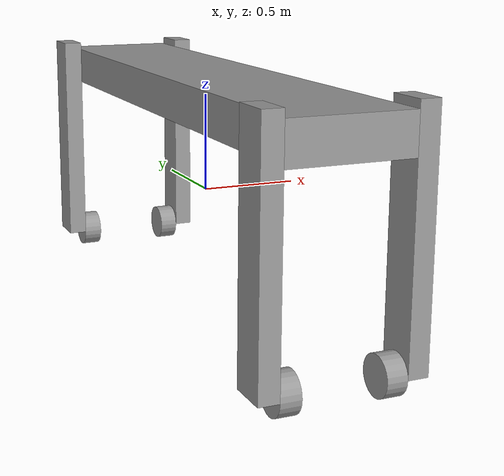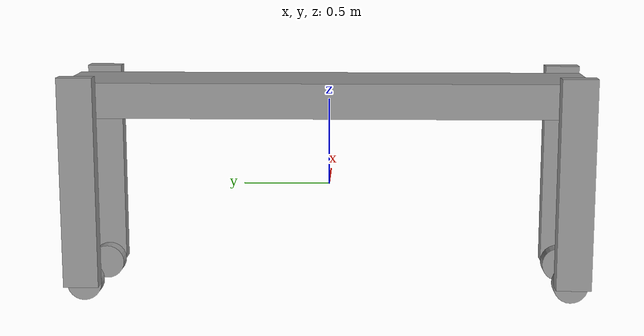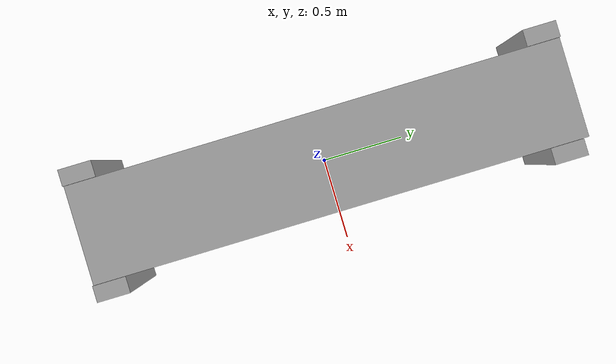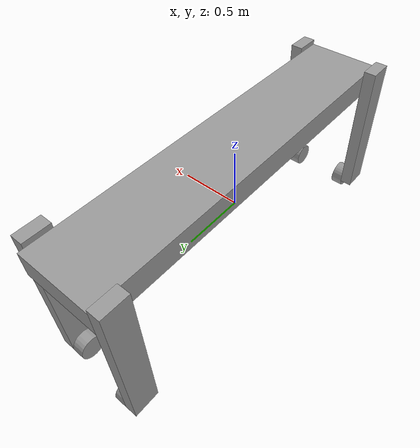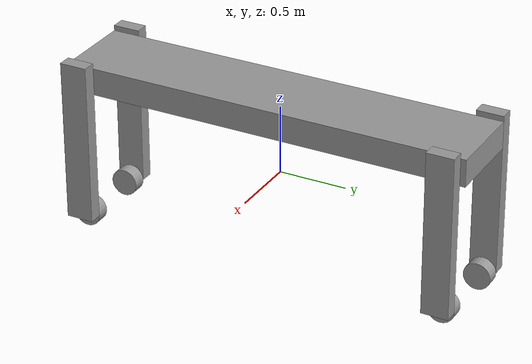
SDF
<?xml version='1.0'?>
<sdf version='1.7'>
  <model name='trolley_3m_long'>
    <link name='link_0'>
      <inertial>
        <mass>1</mass>
        <inertia>
          <ixx>0.166667</ixx>
          <ixy>0</ixy>
          <ixz>0</ixz>
          <iyy>0.166667</iyy>
          <iyz>0</iyz>
          <izz>0.166667</izz>
        </inertia>
        <pose>0 0 0 0 -0 0</pose>
      </inertial>
      <pose>0.010003 0.008889 0.52196 0 -0 0</pose>
      <gravity>1</gravity>
      <self_collide>0</self_collide>
      <kinematic>0</kinematic>
      <enable_wind>0</enable_wind>
      <visual name='visual'>
        <pose>0 0 0 0 -0 0</pose>
        <geometry>
          <box>
            <size>0.6 3 0.2</size>
          </box>
        </geometry>
        <material>
          <lighting>1</lighting>
          <script>
            <uri>file://media/materials/scripts/gazebo.material</uri>
            <name>Gazebo/Grey</name>
          </script>
          <shader type='pixel'>
            <normal_map>__default__</normal_map>
          </shader>
          <ambient>0.3 0.3 0.3 1</ambient>
          <diffuse>0.7 0.7 0.7 1</diffuse>
          <specular>0.01 0.01 0.01 1</specular>
          <emissive>0 0 0 1</emissive>
        </material>
        <transparency>0</transparency>
        <cast_shadows>1</cast_shadows>
      </visual>
      <collision name='collision'>
        <laser_retro>0</laser_retro>
        <max_contacts>10</max_contacts>
        <pose>0 0 0 0 -0 0</pose>
        <geometry>
          <box>
            <size>0.6 3 0.2</size>
          </box>
        </geometry>
        <surface>
          <friction>
            <ode>
              <mu>1</mu>
              <mu2>1</mu2>
              <fdir1>0 0 0</fdir1>
              <slip1>0</slip1>
              <slip2>0</slip2>
            </ode>
            <torsional>
              <coefficient>1</coefficient>
              <patch_radius>0</patch_radius>
              <surface_radius>0</surface_radius>
              <use_patch_radius>1</use_patch_radius>
              <ode>
                <slip>0</slip>
              </ode>
            </torsional>
          </friction>
          <bounce>
            <restitution_coefficient>0</restitution_coefficient>
            <threshold>1e+06</threshold>
          </bounce>
          <contact>
            <collide_without_contact>0</collide_without_contact>
            <collide_without_contact_bitmask>1</collide_without_contact_bitmask>
            <collide_bitmask>1</collide_bitmask>
            <ode>
              <soft_cfm>0</soft_cfm>
              <soft_erp>0.2</soft_erp>
              <kp>1e+13</kp>
              <kd>1</kd>
              <max_vel>0.01</max_vel>
              <min_depth>0</min_depth>
            </ode>
            <bullet>
              <split_impulse>1</split_impulse>
              <split_impulse_penetration_threshold>-0.01</split_impulse_penetration_threshold>
              <soft_cfm>0</soft_cfm>
              <soft_erp>0.2</soft_erp>
              <kp>1e+13</kp>
              <kd>1</kd>
            </bullet>
          </contact>
        </surface>
      </collision>
    </link>
    <link name='link_1'>
      <inertial>
        <mass>1</mass>
        <inertia>
          <ixx>0.166667</ixx>
          <ixy>0</ixy>
          <ixz>0</ixz>
          <iyy>0.166667</iyy>
          <iyz>0</iyz>
          <izz>0.166667</izz>
        </inertia>
        <pose>0 0 0 0 -0 0</pose>
      </inertial>
      <pose>0.360003 1.36889 0.06196 0 -0 0</pose>
      <gravity>1</gravity>
      <self_collide>0</self_collide>
      <kinematic>0</kinematic>
      <enable_wind>0</enable_wind>
      <visual name='visual'>
        <pose>0 0 0 0 -0 0</pose>
        <geometry>
          <box>
            <size>0.1 0.2 1.2</size>
          </box>
        </geometry>
        <material>
          <lighting>1</lighting>
          <script>
            <uri>file://media/materials/scripts/gazebo.material</uri>
            <name>Gazebo/Grey</name>
          </script>
          <shader type='pixel'>
            <normal_map>__default__</normal_map>
          </shader>
          <ambient>0.3 0.3 0.3 1</ambient>
          <diffuse>0.7 0.7 0.7 1</diffuse>
          <specular>0.01 0.01 0.01 1</specular>
          <emissive>0 0 0 1</emissive>
        </material>
        <transparency>0</transparency>
        <cast_shadows>1</cast_shadows>
      </visual>
      <collision name='collision'>
        <laser_retro>0</laser_retro>
        <max_contacts>10</max_contacts>
        <pose>0 0 0 0 -0 0</pose>
        <geometry>
          <box>
            <size>0.1 0.2 1.2</size>
          </box>
        </geometry>
        <surface>
          <friction>
            <ode>
              <mu>1</mu>
              <mu2>1</mu2>
              <fdir1>0 0 0</fdir1>
              <slip1>0</slip1>
              <slip2>0</slip2>
            </ode>
            <torsional>
              <coefficient>1</coefficient>
              <patch_radius>0</patch_radius>
              <surface_radius>0</surface_radius>
              <use_patch_radius>1</use_patch_radius>
              <ode>
                <slip>0</slip>
              </ode>
            </torsional>
          </friction>
          <bounce>
            <restitution_coefficient>0</restitution_coefficient>
            <threshold>1e+06</threshold>
          </bounce>
          <contact>
            <collide_without_contact>0</collide_without_contact>
            <collide_without_contact_bitmask>1</collide_without_contact_bitmask>
            <collide_bitmask>1</collide_bitmask>
            <ode>
              <soft_cfm>0</soft_cfm>
              <soft_erp>0.2</soft_erp>
              <kp>1e+13</kp>
              <kd>1</kd>
              <max_vel>0.01</max_vel>
              <min_depth>0</min_depth>
            </ode>
            <bullet>
              <split_impulse>1</split_impulse>
              <split_impulse_penetration_threshold>-0.01</split_impulse_penetration_threshold>
              <soft_cfm>0</soft_cfm>
              <soft_erp>0.2</soft_erp>
              <kp>1e+13</kp>
              <kd>1</kd>
            </bullet>
          </contact>
        </surface>
      </collision>
    </link>
    <link name='link_1_clone'>
      <inertial>
        <mass>1</mass>
        <inertia>
          <ixx>0.166667</ixx>
          <ixy>0</ixy>
          <ixz>0</ixz>
          <iyy>0.166667</iyy>
          <iyz>0</iyz>
          <izz>0.166667</izz>
        </inertia>
        <pose>0 0 0 0 -0 0</pose>
      </inertial>
      <pose>-0.339997 1.40889 0.06196 0 -0 0</pose>
      <gravity>1</gravity>
      <self_collide>0</self_collide>
      <kinematic>0</kinematic>
      <enable_wind>0</enable_wind>
      <visual name='visual'>
        <pose>0 0 0 0 -0 0</pose>
        <geometry>
          <box>
            <size>0.1 0.2 1.2</size>
          </box>
        </geometry>
        <material>
          <lighting>1</lighting>
          <script>
            <uri>file://media/materials/scripts/gazebo.material</uri>
            <name>Gazebo/Grey</name>
          </script>
          <shader type='pixel'>
            <normal_map>__default__</normal_map>
          </shader>
          <ambient>0.3 0.3 0.3 1</ambient>
          <diffuse>0.7 0.7 0.7 1</diffuse>
          <specular>0.01 0.01 0.01 1</specular>
          <emissive>0 0 0 1</emissive>
        </material>
        <transparency>0</transparency>
        <cast_shadows>1</cast_shadows>
      </visual>
      <collision name='collision'>
        <laser_retro>0</laser_retro>
        <max_contacts>10</max_contacts>
        <pose>0 0 0 0 -0 0</pose>
        <geometry>
          <box>
            <size>0.1 0.2 1.2</size>
          </box>
        </geometry>
        <surface>
          <friction>
            <ode>
              <mu>1</mu>
              <mu2>1</mu2>
              <fdir1>0 0 0</fdir1>
              <slip1>0</slip1>
              <slip2>0</slip2>
            </ode>
            <torsional>
              <coefficient>1</coefficient>
              <patch_radius>0</patch_radius>
              <surface_radius>0</surface_radius>
              <use_patch_radius>1</use_patch_radius>
              <ode>
                <slip>0</slip>
              </ode>
            </torsional>
          </friction>
          <bounce>
            <restitution_coefficient>0</restitution_coefficient>
            <threshold>1e+06</threshold>
          </bounce>
          <contact>
            <collide_without_contact>0</collide_without_contact>
            <collide_without_contact_bitmask>1</collide_without_contact_bitmask>
            <collide_bitmask>1</collide_bitmask>
            <ode>
              <soft_cfm>0</soft_cfm>
              <soft_erp>0.2</soft_erp>
              <kp>1e+13</kp>
              <kd>1</kd>
              <max_vel>0.01</max_vel>
              <min_depth>0</min_depth>
            </ode>
            <bullet>
              <split_impulse>1</split_impulse>
              <split_impulse_penetration_threshold>-0.01</split_impulse_penetration_threshold>
              <soft_cfm>0</soft_cfm>
              <soft_erp>0.2</soft_erp>
              <kp>1e+13</kp>
              <kd>1</kd>
            </bullet>
          </contact>
        </surface>
      </collision>
    </link>
    <link name='link_1_clone_0'>
      <inertial>
        <mass>1</mass>
        <inertia>
          <ixx>0.166667</ixx>
          <ixy>0</ixy>
          <ixz>0</ixz>
          <iyy>0.166667</iyy>
          <iyz>0</iyz>
          <izz>0.166667</izz>
        </inertia>
        <pose>0 0 0 0 -0 0</pose>
      </inertial>
      <pose>0.360003 -1.39111 0.06196 0 -0 0</pose>
      <gravity>1</gravity>
      <self_collide>0</self_collide>
      <kinematic>0</kinematic>
      <enable_wind>0</enable_wind>
      <visual name='visual'>
        <pose>0 0 0 0 -0 0</pose>
        <geometry>
          <box>
            <size>0.1 0.2 1.2</size>
          </box>
        </geometry>
        <material>
          <lighting>1</lighting>
          <script>
            <uri>file://media/materials/scripts/gazebo.material</uri>
            <name>Gazebo/Grey</name>
          </script>
          <shader type='pixel'>
            <normal_map>__default__</normal_map>
          </shader>
          <ambient>0.3 0.3 0.3 1</ambient>
          <diffuse>0.7 0.7 0.7 1</diffuse>
          <specular>0.01 0.01 0.01 1</specular>
          <emissive>0 0 0 1</emissive>
        </material>
        <transparency>0</transparency>
        <cast_shadows>1</cast_shadows>
      </visual>
      <collision name='collision'>
        <laser_retro>0</laser_retro>
        <max_contacts>10</max_contacts>
        <pose>0 0 0 0 -0 0</pose>
        <geometry>
          <box>
            <size>0.1 0.2 1.2</size>
          </box>
        </geometry>
        <surface>
          <friction>
            <ode>
              <mu>1</mu>
              <mu2>1</mu2>
              <fdir1>0 0 0</fdir1>
              <slip1>0</slip1>
              <slip2>0</slip2>
            </ode>
            <torsional>
              <coefficient>1</coefficient>
              <patch_radius>0</patch_radius>
              <surface_radius>0</surface_radius>
              <use_patch_radius>1</use_patch_radius>
              <ode>
                <slip>0</slip>
              </ode>
            </torsional>
          </friction>
          <bounce>
            <restitution_coefficient>0</restitution_coefficient>
            <threshold>1e+06</threshold>
          </bounce>
          <contact>
            <collide_without_contact>0</collide_without_contact>
            <collide_without_contact_bitmask>1</collide_without_contact_bitmask>
            <collide_bitmask>1</collide_bitmask>
            <ode>
              <soft_cfm>0</soft_cfm>
              <soft_erp>0.2</soft_erp>
              <kp>1e+13</kp>
              <kd>1</kd>
              <max_vel>0.01</max_vel>
              <min_depth>0</min_depth>
            </ode>
            <bullet>
              <split_impulse>1</split_impulse>
              <split_impulse_penetration_threshold>-0.01</split_impulse_penetration_threshold>
              <soft_cfm>0</soft_cfm>
              <soft_erp>0.2</soft_erp>
              <kp>1e+13</kp>
              <kd>1</kd>
            </bullet>
          </contact>
        </surface>
      </collision>
    </link>
    <link name='link_1_clone_1'>
      <inertial>
        <mass>1</mass>
        <inertia>
          <ixx>0.166667</ixx>
          <ixy>0</ixy>
          <ixz>0</ixz>
          <iyy>0.166667</iyy>
          <iyz>0</iyz>
          <izz>0.166667</izz>
        </inertia>
        <pose>0 0 0 0 -0 0</pose>
      </inertial>
      <pose>-0.339997 -1.39111 0.06196 0 -0 0</pose>
      <gravity>1</gravity>
      <self_collide>0</self_collide>
      <kinematic>0</kinematic>
      <enable_wind>0</enable_wind>
      <visual name='visual'>
        <pose>0 0 0 0 -0 0</pose>
        <geometry>
          <box>
            <size>0.1 0.2 1.2</size>
          </box>
        </geometry>
        <material>
          <lighting>1</lighting>
          <script>
            <uri>file://media/materials/scripts/gazebo.material</uri>
            <name>Gazebo/Grey</name>
          </script>
          <shader type='pixel'>
            <normal_map>__default__</normal_map>
          </shader>
          <ambient>0.3 0.3 0.3 1</ambient>
          <diffuse>0.7 0.7 0.7 1</diffuse>
          <specular>0.01 0.01 0.01 1</specular>
          <emissive>0 0 0 1</emissive>
        </material>
        <transparency>0</transparency>
        <cast_shadows>1</cast_shadows>
      </visual>
      <collision name='collision'>
        <laser_retro>0</laser_retro>
        <max_contacts>10</max_contacts>
        <pose>0 0 0 0 -0 0</pose>
        <geometry>
          <box>
            <size>0.1 0.2 1.2</size>
          </box>
        </geometry>
        <surface>
          <friction>
            <ode>
              <mu>1</mu>
              <mu2>1</mu2>
              <fdir1>0 0 0</fdir1>
              <slip1>0</slip1>
              <slip2>0</slip2>
            </ode>
            <torsional>
              <coefficient>1</coefficient>
              <patch_radius>0</patch_radius>
              <surface_radius>0</surface_radius>
              <use_patch_radius>1</use_patch_radius>
              <ode>
                <slip>0</slip>
              </ode>
            </torsional>
          </friction>
          <bounce>
            <restitution_coefficient>0</restitution_coefficient>
            <threshold>1e+06</threshold>
          </bounce>
          <contact>
            <collide_without_contact>0</collide_without_contact>
            <collide_without_contact_bitmask>1</collide_without_contact_bitmask>
            <collide_bitmask>1</collide_bitmask>
            <ode>
              <soft_cfm>0</soft_cfm>
              <soft_erp>0.2</soft_erp>
              <kp>1e+13</kp>
              <kd>1</kd>
              <max_vel>0.01</max_vel>
              <min_depth>0</min_depth>
            </ode>
            <bullet>
              <split_impulse>1</split_impulse>
              <split_impulse_penetration_threshold>-0.01</split_impulse_penetration_threshold>
              <soft_cfm>0</soft_cfm>
              <soft_erp>0.2</soft_erp>
              <kp>1e+13</kp>
              <kd>1</kd>
            </bullet>
          </contact>
        </surface>
      </collision>
    </link>
    <link name='link_2'>
      <inertial>
        <mass>1</mass>
        <inertia>
          <ixx>0.145833</ixx>
          <ixy>0</ixy>
          <ixz>0</ixz>
          <iyy>0.145833</iyy>
          <iyz>0</iyz>
          <izz>0.125</izz>
        </inertia>
        <pose>0 0 0 0 -0 0</pose>
      </inertial>
      <pose>0.260003 1.36889 -0.53804 0 1.57 0</pose>
      <gravity>1</gravity>
      <self_collide>0</self_collide>
      <kinematic>0</kinematic>
      <enable_wind>0</enable_wind>
      <visual name='visual'>
        <pose>0 0 0 0 -0 0</pose>
        <geometry>
          <cylinder>
            <radius>0.1</radius>
            <length>0.1</length>
          </cylinder>
        </geometry>
        <material>
          <lighting>1</lighting>
          <script>
            <uri>file://media/materials/scripts/gazebo.material</uri>
            <name>Gazebo/Grey</name>
          </script>
          <shader type='pixel'>
            <normal_map>__default__</normal_map>
          </shader>
          <ambient>0.3 0.3 0.3 1</ambient>
          <diffuse>0.7 0.7 0.7 1</diffuse>
          <specular>0.01 0.01 0.01 1</specular>
          <emissive>0 0 0 1</emissive>
        </material>
        <transparency>0</transparency>
        <cast_shadows>1</cast_shadows>
      </visual>
      <collision name='collision'>
        <laser_retro>0</laser_retro>
        <max_contacts>10</max_contacts>
        <pose>0 0 0 0 -0 0</pose>
        <geometry>
          <cylinder>
            <radius>0.1</radius>
            <length>0.1</length>
          </cylinder>
        </geometry>
        <surface>
          <friction>
            <ode>
              <mu>1</mu>
              <mu2>1</mu2>
              <fdir1>0 0 0</fdir1>
              <slip1>0</slip1>
              <slip2>0</slip2>
            </ode>
            <torsional>
              <coefficient>1</coefficient>
              <patch_radius>0</patch_radius>
              <surface_radius>0</surface_radius>
              <use_patch_radius>1</use_patch_radius>
              <ode>
                <slip>0</slip>
              </ode>
            </torsional>
          </friction>
          <bounce>
            <restitution_coefficient>0</restitution_coefficient>
            <threshold>1e+06</threshold>
          </bounce>
          <contact>
            <collide_without_contact>0</collide_without_contact>
            <collide_without_contact_bitmask>1</collide_without_contact_bitmask>
            <collide_bitmask>1</collide_bitmask>
            <ode>
              <soft_cfm>0</soft_cfm>
              <soft_erp>0.2</soft_erp>
              <kp>1e+13</kp>
              <kd>1</kd>
              <max_vel>0.01</max_vel>
              <min_depth>0</min_depth>
            </ode>
            <bullet>
              <split_impulse>1</split_impulse>
              <split_impulse_penetration_threshold>-0.01</split_impulse_penetration_threshold>
              <soft_cfm>0</soft_cfm>
              <soft_erp>0.2</soft_erp>
              <kp>1e+13</kp>
              <kd>1</kd>
            </bullet>
          </contact>
        </surface>
      </collision>
    </link>
    <link name='link_2_clone'>
      <inertial>
        <mass>1</mass>
        <inertia>
          <ixx>0.145833</ixx>
          <ixy>0</ixy>
          <ixz>0</ixz>
          <iyy>0.145833</iyy>
          <iyz>0</iyz>
          <izz>0.125</izz>
        </inertia>
        <pose>0 0 0 0 -0 0</pose>
      </inertial>
      <pose>-0.239917 1.40889 -0.53804 0 1.57 0</pose>
      <gravity>1</gravity>
      <self_collide>0</self_collide>
      <kinematic>0</kinematic>
      <enable_wind>0</enable_wind>
      <visual name='visual'>
        <pose>0 0 0 0 -0 0</pose>
        <geometry>
          <cylinder>
            <radius>0.1</radius>
            <length>0.1</length>
          </cylinder>
        </geometry>
        <material>
          <lighting>1</lighting>
          <script>
            <uri>file://media/materials/scripts/gazebo.material</uri>
            <name>Gazebo/Grey</name>
          </script>
          <shader type='pixel'>
            <normal_map>__default__</normal_map>
          </shader>
          <ambient>0.3 0.3 0.3 1</ambient>
          <diffuse>0.7 0.7 0.7 1</diffuse>
          <specular>0.01 0.01 0.01 1</specular>
          <emissive>0 0 0 1</emissive>
        </material>
        <transparency>0</transparency>
        <cast_shadows>1</cast_shadows>
      </visual>
      <collision name='collision'>
        <laser_retro>0</laser_retro>
        <max_contacts>10</max_contacts>
        <pose>0 0 0 0 -0 0</pose>
        <geometry>
          <cylinder>
            <radius>0.1</radius>
            <length>0.1</length>
          </cylinder>
        </geometry>
        <surface>
          <friction>
            <ode>
              <mu>1</mu>
              <mu2>1</mu2>
              <fdir1>0 0 0</fdir1>
              <slip1>0</slip1>
              <slip2>0</slip2>
            </ode>
            <torsional>
              <coefficient>1</coefficient>
              <patch_radius>0</patch_radius>
              <surface_radius>0</surface_radius>
              <use_patch_radius>1</use_patch_radius>
              <ode>
                <slip>0</slip>
              </ode>
            </torsional>
          </friction>
          <bounce>
            <restitution_coefficient>0</restitution_coefficient>
            <threshold>1e+06</threshold>
          </bounce>
          <contact>
            <collide_without_contact>0</collide_without_contact>
            <collide_without_contact_bitmask>1</collide_without_contact_bitmask>
            <collide_bitmask>1</collide_bitmask>
            <ode>
              <soft_cfm>0</soft_cfm>
              <soft_erp>0.2</soft_erp>
              <kp>1e+13</kp>
              <kd>1</kd>
              <max_vel>0.01</max_vel>
              <min_depth>0</min_depth>
            </ode>
            <bullet>
              <split_impulse>1</split_impulse>
              <split_impulse_penetration_threshold>-0.01</split_impulse_penetration_threshold>
              <soft_cfm>0</soft_cfm>
              <soft_erp>0.2</soft_erp>
              <kp>1e+13</kp>
              <kd>1</kd>
            </bullet>
          </contact>
        </surface>
      </collision>
    </link>
    <link name='link_2_clone_0'>
      <inertial>
        <mass>1</mass>
        <inertia>
          <ixx>0.145833</ixx>
          <ixy>0</ixy>
          <ixz>0</ixz>
          <iyy>0.145833</iyy>
          <iyz>0</iyz>
          <izz>0.125</izz>
        </inertia>
        <pose>0 0 0 0 -0 0</pose>
      </inertial>
      <pose>0.259923 -1.39111 -0.53804 0 1.57 0</pose>
      <gravity>1</gravity>
      <self_collide>0</self_collide>
      <kinematic>0</kinematic>
      <enable_wind>0</enable_wind>
      <visual name='visual'>
        <pose>0 0 0 0 -0 0</pose>
        <geometry>
          <cylinder>
            <radius>0.1</radius>
            <length>0.1</length>
          </cylinder>
        </geometry>
        <material>
          <lighting>1</lighting>
          <script>
            <uri>file://media/materials/scripts/gazebo.material</uri>
            <name>Gazebo/Grey</name>
          </script>
          <shader type='pixel'>
            <normal_map>__default__</normal_map>
          </shader>
          <ambient>0.3 0.3 0.3 1</ambient>
          <diffuse>0.7 0.7 0.7 1</diffuse>
          <specular>0.01 0.01 0.01 1</specular>
          <emissive>0 0 0 1</emissive>
        </material>
        <transparency>0</transparency>
        <cast_shadows>1</cast_shadows>
      </visual>
      <collision name='collision'>
        <laser_retro>0</laser_retro>
        <max_contacts>10</max_contacts>
        <pose>0 0 0 0 -0 0</pose>
        <geometry>
          <cylinder>
            <radius>0.1</radius>
            <length>0.1</length>
          </cylinder>
        </geometry>
        <surface>
          <friction>
            <ode>
              <mu>1</mu>
              <mu2>1</mu2>
              <fdir1>0 0 0</fdir1>
              <slip1>0</slip1>
              <slip2>0</slip2>
            </ode>
            <torsional>
              <coefficient>1</coefficient>
              <patch_radius>0</patch_radius>
              <surface_radius>0</surface_radius>
              <use_patch_radius>1</use_patch_radius>
              <ode>
                <slip>0</slip>
              </ode>
            </torsional>
          </friction>
          <bounce>
            <restitution_coefficient>0</restitution_coefficient>
            <threshold>1e+06</threshold>
          </bounce>
          <contact>
            <collide_without_contact>0</collide_without_contact>
            <collide_without_contact_bitmask>1</collide_without_contact_bitmask>
            <collide_bitmask>1</collide_bitmask>
            <ode>
              <soft_cfm>0</soft_cfm>
              <soft_erp>0.2</soft_erp>
              <kp>1e+13</kp>
              <kd>1</kd>
              <max_vel>0.01</max_vel>
              <min_depth>0</min_depth>
            </ode>
            <bullet>
              <split_impulse>1</split_impulse>
              <split_impulse_penetration_threshold>-0.01</split_impulse_penetration_threshold>
              <soft_cfm>0</soft_cfm>
              <soft_erp>0.2</soft_erp>
              <kp>1e+13</kp>
              <kd>1</kd>
            </bullet>
          </contact>
        </surface>
      </collision>
    </link>
    <link name='link_2_clone_1'>
      <inertial>
        <mass>1</mass>
        <inertia>
          <ixx>0.145833</ixx>
          <ixy>0</ixy>
          <ixz>0</ixz>
          <iyy>0.145833</iyy>
          <iyz>0</iyz>
          <izz>0.125</izz>
        </inertia>
        <pose>0 0 0 0 -0 0</pose>
      </inertial>
      <pose>-0.239917 -1.39111 -0.53804 0 1.57 0</pose>
      <gravity>1</gravity>
      <self_collide>0</self_collide>
      <kinematic>0</kinematic>
      <enable_wind>0</enable_wind>
      <visual name='visual'>
        <pose>0 0 0 0 -0 0</pose>
        <geometry>
          <cylinder>
            <radius>0.1</radius>
            <length>0.1</length>
          </cylinder>
        </geometry>
        <material>
          <lighting>1</lighting>
          <script>
            <uri>file://media/materials/scripts/gazebo.material</uri>
            <name>Gazebo/Grey</name>
          </script>
          <shader type='pixel'>
            <normal_map>__default__</normal_map>
          </shader>
          <ambient>0.3 0.3 0.3 1</ambient>
          <diffuse>0.7 0.7 0.7 1</diffuse>
          <specular>0.01 0.01 0.01 1</specular>
          <emissive>0 0 0 1</emissive>
        </material>
        <transparency>0</transparency>
        <cast_shadows>1</cast_shadows>
      </visual>
      <collision name='collision'>
        <laser_retro>0</laser_retro>
        <max_contacts>10</max_contacts>
        <pose>0 0 0 0 -0 0</pose>
        <geometry>
          <cylinder>
            <radius>0.1</radius>
            <length>0.1</length>
          </cylinder>
        </geometry>
        <surface>
          <friction>
            <ode>
              <mu>1</mu>
              <mu2>1</mu2>
              <fdir1>0 0 0</fdir1>
              <slip1>0</slip1>
              <slip2>0</slip2>
            </ode>
            <torsional>
              <coefficient>1</coefficient>
              <patch_radius>0</patch_radius>
              <surface_radius>0</surface_radius>
              <use_patch_radius>1</use_patch_radius>
              <ode>
                <slip>0</slip>
              </ode>
            </torsional>
          </friction>
          <bounce>
            <restitution_coefficient>0</restitution_coefficient>
            <threshold>1e+06</threshold>
          </bounce>
          <contact>
            <collide_without_contact>0</collide_without_contact>
            <collide_without_contact_bitmask>1</collide_without_contact_bitmask>
            <collide_bitmask>1</collide_bitmask>
            <ode>
              <soft_cfm>0</soft_cfm>
              <soft_erp>0.2</soft_erp>
              <kp>1e+13</kp>
              <kd>1</kd>
              <max_vel>0.01</max_vel>
              <min_depth>0</min_depth>
            </ode>
            <bullet>
              <split_impulse>1</split_impulse>
              <split_impulse_penetration_threshold>-0.01</split_impulse_penetration_threshold>
              <soft_cfm>0</soft_cfm>
              <soft_erp>0.2</soft_erp>
              <kp>1e+13</kp>
              <kd>1</kd>
            </bullet>
          </contact>
        </surface>
      </collision>
    </link>
    <joint name='link_0_JOINT_0' type='fixed'>
      <parent>link_0</parent>
      <child>link_1</child>
      <pose>0 0 0 0 -0 0</pose>
      <physics>
        <ode>
          <limit>
            <cfm>0</cfm>
            <erp>0.2</erp>
          </limit>
          <suspension>
            <cfm>0</cfm>
            <erp>0.2</erp>
          </suspension>
        </ode>
      </physics>
    </joint>
    <joint name='link_0_JOINT_1' type='fixed'>
      <parent>link_0</parent>
      <child>link_1_clone</child>
      <pose>0 0 0 0 -0 0</pose>
      <physics>
        <ode>
          <limit>
            <cfm>0</cfm>
            <erp>0.2</erp>
          </limit>
          <suspension>
            <cfm>0</cfm>
            <erp>0.2</erp>
          </suspension>
        </ode>
      </physics>
    </joint>
    <joint name='link_0_JOINT_2' type='fixed'>
      <parent>link_0</parent>
      <child>link_1_clone_0</child>
      <pose>0 0 0 0 -0 0</pose>
      <physics>
        <ode>
          <limit>
            <cfm>0</cfm>
            <erp>0.2</erp>
          </limit>
          <suspension>
            <cfm>0</cfm>
            <erp>0.2</erp>
          </suspension>
        </ode>
      </physics>
    </joint>
    <joint name='link_0_JOINT_3' type='fixed'>
      <parent>link_0</parent>
      <child>link_1_clone_1</child>
      <pose>0 0 0 0 -0 0</pose>
      <physics>
        <ode>
          <limit>
            <cfm>0</cfm>
            <erp>0.2</erp>
          </limit>
          <suspension>
            <cfm>0</cfm>
            <erp>0.2</erp>
          </suspension>
        </ode>
      </physics>
    </joint>
    <joint name='link_1_JOINT_4' type='revolute'>
      <parent>link_1</parent>
      <child>link_2</child>
      <pose>0 0 0 0 -0 0</pose>
      <axis>
        <xyz>0 0 1</xyz>
        <limit>
          <lower>-1.79769e+308</lower>
          <upper>1.79769e+308</upper>
          <effort>-1</effort>
          <velocity>-1</velocity>
        </limit>
        <dynamics>
          <spring_reference>0</spring_reference>
          <spring_stiffness>0</spring_stiffness>
          <damping>0</damping>
        </dynamics>
      </axis>
      <physics>
        <ode>
          <limit>
            <cfm>0</cfm>
            <erp>0.2</erp>
          </limit>
          <suspension>
            <cfm>0</cfm>
            <erp>0.2</erp>
          </suspension>
        </ode>
      </physics>
    </joint>
    <joint name='link_1_clone_0_JOINT_6' type='revolute'>
      <parent>link_1_clone_0</parent>
      <child>link_2_clone_0</child>
      <pose>0 0 0 0 -0 0</pose>
      <axis>
        <xyz>0 0 1</xyz>
        <limit>
          <lower>-1.79769e+308</lower>
          <upper>1.79769e+308</upper>
          <effort>-1</effort>
          <velocity>-1</velocity>
        </limit>
        <dynamics>
          <spring_reference>0</spring_reference>
          <spring_stiffness>0</spring_stiffness>
          <damping>0</damping>
        </dynamics>
      </axis>
      <physics>
        <ode>
          <limit>
            <cfm>0</cfm>
            <erp>0.2</erp>
          </limit>
          <suspension>
            <cfm>0</cfm>
            <erp>0.2</erp>
          </suspension>
        </ode>
      </physics>
    </joint>
    <joint name='link_1_clone_1_JOINT_7' type='revolute'>
      <parent>link_1_clone_1</parent>
      <child>link_2_clone_1</child>
      <pose>0 0 0 0 -0 0</pose>
      <axis>
        <xyz>0 0 1</xyz>
        <limit>
          <lower>-1.79769e+308</lower>
          <upper>1.79769e+308</upper>
          <effort>-1</effort>
          <velocity>-1</velocity>
        </limit>
        <dynamics>
          <spring_reference>0</spring_reference>
          <spring_stiffness>0</spring_stiffness>
          <damping>0</damping>
        </dynamics>
      </axis>
      <physics>
        <ode>
          <limit>
            <cfm>0</cfm>
            <erp>0.2</erp>
          </limit>
          <suspension>
            <cfm>0</cfm>
            <erp>0.2</erp>
          </suspension>
        </ode>
      </physics>
    </joint>
    <joint name='link_1_clone_JOINT_5' type='revolute'>
      <parent>link_1_clone</parent>
      <child>link_2_clone</child>
      <pose>0 0 0 0 -0 0</pose>
      <axis>
        <xyz>0 0 1</xyz>
        <limit>
          <lower>-1.79769e+308</lower>
          <upper>1.79769e+308</upper>
          <effort>-1</effort>
          <velocity>-1</velocity>
        </limit>
        <dynamics>
          <spring_reference>0</spring_reference>
          <spring_stiffness>0</spring_stiffness>
          <damping>0</damping>
        </dynamics>
      </axis>
      <physics>
        <ode>
          <limit>
            <cfm>0</cfm>
            <erp>0.2</erp>
          </limit>
          <suspension>
            <cfm>0</cfm>
            <erp>0.2</erp>
          </suspension>
        </ode>
      </physics>
    </joint>
    <static>0</static>
    <allow_auto_disable>1</allow_auto_disable>
  </model>
</sdf>
